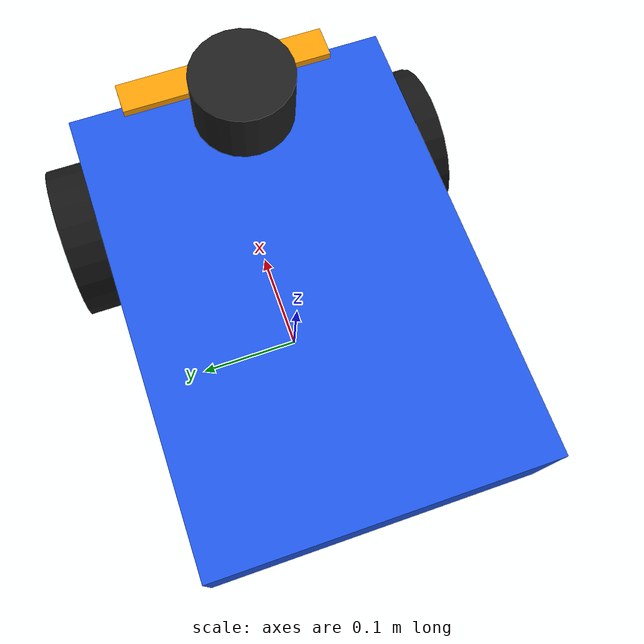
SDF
<?xml version="1.0"?>
<sdf version="1.9">
  <model name="rse_bot" canonical_link="base_link">
    <static>false</static>
    <self_collide>false</self_collide>

    <link name="base_link">
      <pose>0 0 0.14 0 0 0</pose>
      <inertial>
        <mass>7.0</mass>
        <inertia>
          <ixx>0.065</ixx><ixy>0</ixy><ixz>0</ixz>
          <iyy>0.105</iyy><iyz>0</iyz><izz>0.145</izz>
        </inertia>
      </inertial>
      <collision name="base_collision">
        <geometry><box><size>0.42 0.30 0.10</size></box></geometry>
      </collision>
      <visual name="base_visual">
        <geometry><box><size>0.42 0.30 0.10</size></box></geometry>
        <material>
          <ambient>0.10 0.28 0.72 1</ambient>
          <diffuse>0.12 0.34 0.90 1</diffuse>
          <specular>0.15 0.15 0.15 1</specular>
        </material>
      </visual>
      <!-- Bright wedge-like front marker: the robot's +X direction. -->
      <visual name="front_marker">
        <pose>0.215 0 0.035 0 0 0</pose>
        <geometry><box><size>0.03 0.20 0.045</size></box></geometry>
        <material>
          <ambient>1.0 0.55 0.02 1</ambient>
          <diffuse>1.0 0.62 0.02 1</diffuse>
        </material>
      </visual>
    </link>

    <link name="left_wheel_link">
      <pose>0.15 0.17 0.075 -1.57079632679 0 0</pose>
      <inertial>
        <mass>0.45</mass>
        <inertia>
          <ixx>0.0014</ixx><ixy>0</ixy><ixz>0</ixz>
          <iyy>0.0008</iyy><iyz>0</iyz><izz>0.0014</izz>
        </inertia>
      </inertial>
      <collision name="left_wheel_collision">
        <geometry><cylinder><radius>0.075</radius><length>0.04</length></cylinder></geometry>
        <surface><friction><ode><mu>1.2</mu><mu2>1.2</mu2></ode></friction></surface>
      </collision>
      <visual name="left_wheel_visual">
        <geometry><cylinder><radius>0.075</radius><length>0.04</length></cylinder></geometry>
        <material><ambient>0.04 0.04 0.04 1</ambient><diffuse>0.08 0.08 0.08 1</diffuse></material>
      </visual>
    </link>

    <link name="right_wheel_link">
      <pose>0.15 -0.17 0.075 -1.57079632679 0 0</pose>
      <inertial>
        <mass>0.45</mass>
        <inertia>
          <ixx>0.0014</ixx><ixy>0</ixy><ixz>0</ixz>
          <iyy>0.0008</iyy><iyz>0</iyz><izz>0.0014</izz>
        </inertia>
      </inertial>
      <collision name="right_wheel_collision">
        <geometry><cylinder><radius>0.075</radius><length>0.04</length></cylinder></geometry>
        <surface><friction><ode><mu>1.2</mu><mu2>1.2</mu2></ode></friction></surface>
      </collision>
      <visual name="right_wheel_visual">
        <geometry><cylinder><radius>0.075</radius><length>0.04</length></cylinder></geometry>
        <material><ambient>0.04 0.04 0.04 1</ambient><diffuse>0.08 0.08 0.08 1</diffuse></material>
      </visual>
    </link>

    <link name="caster_link">
      <pose>-0.16 0 0.035 0 0 0</pose>
      <inertial>
        <mass>0.15</mass>
        <inertia>
          <ixx>0.00008</ixx><ixy>0</ixy><ixz>0</ixz>
          <iyy>0.00008</iyy><iyz>0</iyz><izz>0.00008</izz>
        </inertia>
      </inertial>
      <collision name="caster_collision">
        <geometry><sphere><radius>0.035</radius></sphere></geometry>
        <surface><friction><ode><mu>0.001</mu><mu2>0.001</mu2></ode></friction></surface>
      </collision>
      <visual name="caster_visual">
        <geometry><sphere><radius>0.035</radius></sphere></geometry>
        <material><ambient>0.35 0.35 0.35 1</ambient><diffuse>0.45 0.45 0.45 1</diffuse></material>
      </visual>
    </link>

    <link name="lidar_link">
      <pose>0.15 0 0.25 0 0 0</pose>
      <inertial>
        <mass>0.12</mass>
        <inertia>
          <ixx>0.0001</ixx><ixy>0</ixy><ixz>0</ixz>
          <iyy>0.0001</iyy><iyz>0</iyz><izz>0.0001</izz>
        </inertia>
      </inertial>
      <visual name="lidar_visual">
        <geometry><cylinder><radius>0.045</radius><length>0.055</length></cylinder></geometry>
        <material><ambient>0.08 0.08 0.08 1</ambient><diffuse>0.12 0.12 0.12 1</diffuse></material>
      </visual>
      <sensor name="planar_lidar" type="gpu_lidar">
        <topic>/scan</topic>
        <update_rate>10</update_rate>
        <always_on>true</always_on>
        <visualize>true</visualize>
        <ray>
          <scan>
            <horizontal>
              <samples>541</samples>
              <resolution>1</resolution>
              <min_angle>-2.35619449</min_angle>
              <max_angle>2.35619449</max_angle>
            </horizontal>
            <vertical>
              <samples>1</samples>
              <resolution>1</resolution>
              <min_angle>0</min_angle>
              <max_angle>0</max_angle>
            </vertical>
          </scan>
          <range>
            <min>0.10</min>
            <max>10.0</max>
            <resolution>0.01</resolution>
          </range>
          <noise>
            <type>gaussian</type>
            <mean>0.0</mean>
            <stddev>0.005</stddev>
          </noise>
        </ray>
      </sensor>
    </link>

    <joint name="left_wheel_joint" type="revolute">
      <parent>base_link</parent>
      <child>left_wheel_link</child>
      <pose relative_to="left_wheel_link">0 0 0 0 0 0</pose>
      <axis>
        <xyz expressed_in="__model__">0 1 0</xyz>
        <limit><lower>-1.0e16</lower><upper>1.0e16</upper><effort>20</effort><velocity>20</velocity></limit>
      </axis>
    </joint>

    <joint name="right_wheel_joint" type="revolute">
      <parent>base_link</parent>
      <child>right_wheel_link</child>
      <pose relative_to="right_wheel_link">0 0 0 0 0 0</pose>
      <axis>
        <xyz expressed_in="__model__">0 1 0</xyz>
        <limit><lower>-1.0e16</lower><upper>1.0e16</upper><effort>20</effort><velocity>20</velocity></limit>
      </axis>
    </joint>

    <joint name="caster_joint" type="fixed">
      <parent>base_link</parent>
      <child>caster_link</child>
    </joint>

    <joint name="lidar_joint" type="fixed">
      <parent>base_link</parent>
      <child>lidar_link</child>
    </joint>

    <plugin filename="gz-sim-diff-drive-system" name="gz::sim::systems::DiffDrive">
      <left_joint>left_wheel_joint</left_joint>
      <right_joint>right_wheel_joint</right_joint>
      <wheel_separation>0.34</wheel_separation>
      <wheel_radius>0.075</wheel_radius>
      <topic>/cmd_vel</topic>
      <odom_topic>/odom</odom_topic>
      <tf_topic>/tf</tf_topic>
      <frame_id>odom</frame_id>
      <child_frame_id>base_link</child_frame_id>
      <odom_publish_frequency>50</odom_publish_frequency>
      <max_linear_velocity>0.8</max_linear_velocity>
      <min_linear_velocity>-0.5</min_linear_velocity>
      <max_angular_velocity>2.0</max_angular_velocity>
      <min_angular_velocity>-2.0</min_angular_velocity>
      <max_linear_acceleration>1.5</max_linear_acceleration>
      <max_angular_acceleration>4.0</max_angular_acceleration>
    </plugin>

    <plugin filename="gz-sim-joint-state-publisher-system" name="gz::sim::systems::JointStatePublisher">
      <topic>/joint_states</topic>
      <joint_name>left_wheel_joint</joint_name>
      <joint_name>right_wheel_joint</joint_name>
    </plugin>
  </model>
</sdf>
